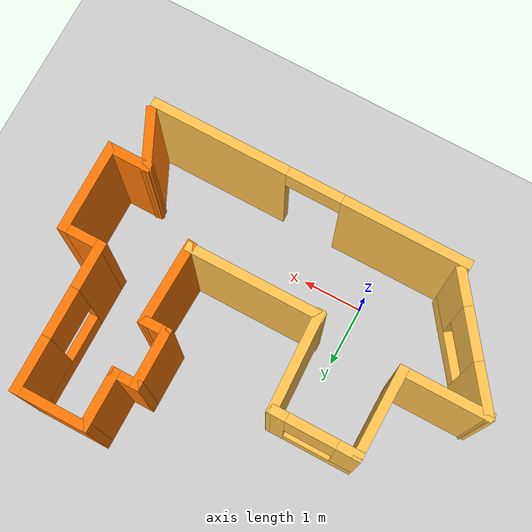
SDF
<sdf version="1.6">
 <world name="default">
  <light name="sun" type="directional">
   <pose>0 0 10 0 -0 0</pose>
   <diffuse>0.8 0.8 0.8 1</diffuse>
   <specular>0.2 0.2 0.2 1</specular>
   <attenuation>
    <range>1000</range>
    <constant>0.9</constant>
    <linear>0.01</linear>
    <quadratic>0.001</quadratic>
   </attenuation>
   <direction>-0.5 0.1 -0.9</direction>
  </light>
  <model name="ground_plane">
   <static>1</static>
   <link name="link">
    <collision name="collision">
     <geometry><plane><normal>0 0 1</normal><size>100 100</size></plane></geometry>
     <surface><friction><ode><mu>100</mu><mu2>50</mu2></ode></friction></surface>
    </collision>
    <visual name="visual">
     <cast_shadows>0</cast_shadows>
     <geometry><plane><normal>0 0 1</normal><size>100 100</size></plane></geometry>
     <material>
      <script><uri>file://media/materials/scripts/gazebo.material</uri><name>Gazebo/Grey</name></script>
     </material>
    </visual>
   </link>
  </model>
  <gravity>0 0 -9.8</gravity>
  <magnetic_field>6e-06 2.3e-05 -4.2e-05</magnetic_field>
  <atmosphere type="adiabatic"/>
  <physics name="default_physics" default="0" type="ode">
   <max_step_size>0.001</max_step_size>
   <real_time_factor>1</real_time_factor>
   <real_time_update_rate>1000</real_time_update_rate>
  </physics>
  <scene><ambient>0.4 0.4 0.4 1</ambient><background>0.7 0.7 0.7 1</background><shadows>1</shadows></scene>
  <spherical_coordinates>
   <surface_model>EARTH_WGS84</surface_model>
   <latitude_deg>0</latitude_deg>
   <longitude_deg>0</longitude_deg>
   <elevation>0</elevation>
   <heading_deg>0</heading_deg>
  </spherical_coordinates>
  <model name="world2">
   <pose>0.934991 1.50045 0 0 -0 0</pose>
   <link name="Wall_0">
    <pose>0.50694 -2.30955 0 0 -0 0</pose>
    <visual name="Wall_0_Visual_0">
     <pose>-1.58393 0 1.25 0 -0 0</pose>
     <geometry><box><size>2.08215 0.15 2.5</size></box></geometry>
     <material>
      <script><uri>file://media/materials/scripts/gazebo.material</uri><name>Gazebo/Grey</name></script>
      <ambient>1 0.764706 0.305882 1</ambient>
     </material>
     <meta><layer>0</layer></meta>
    </visual>
    <collision name="Wall_0_Collision_0">
     <geometry><box><size>2.08215 0.15 2.5</size></box></geometry>
     <pose>-1.58393 0 1.25 0 -0 0</pose>
    </collision>
    <visual name="Wall_0_Visual_1">
     <pose>1.49107 0 1.25 0 -0 0</pose>
     <geometry><box><size>2.26785 0.15 2.5</size></box></geometry>
     <material>
      <script><uri>file://media/materials/scripts/gazebo.material</uri><name>Gazebo/Grey</name></script>
      <ambient>1 0.764706 0.305882 1</ambient>
     </material>
     <meta><layer>0</layer></meta>
    </visual>
    <collision name="Wall_0_Collision_1">
     <geometry><box><size>2.26785 0.15 2.5</size></box></geometry>
     <pose>1.49107 0 1.25 0 -0 0</pose>
    </collision>
    <visual name="Wall_0_Visual_2">
     <pose>-0.092851 0 2.25 0 -0 0</pose>
     <geometry><box><size>0.9 0.15 0.5</size></box></geometry>
     <material>
      <script><uri>file://media/materials/scripts/gazebo.material</uri><name>Gazebo/Grey</name></script>
      <ambient>1 0.764706 0.305882 1</ambient>
     </material>
     <meta><layer>0</layer></meta>
    </visual>
    <collision name="Wall_0_Collision_2">
     <geometry><box><size>0.9 0.15 0.5</size></box></geometry>
     <pose>-0.092851 0 2.25 0 -0 0</pose>
    </collision>
   </link>
   <link name="Wall_1">
    <collision name="Wall_1_Collision">
     <geometry><box><size>1.00839 0.15 2.5</size></box></geometry>
     <pose>0 0 1.25 0 -0 0</pose>
    </collision>
    <visual name="Wall_1_Visual">
     <pose>0 0 1.25 0 -0 0</pose>
     <geometry><box><size>1.00839 0.15 2.5</size></box></geometry>
     <material>
      <script><uri>file://media/materials/scripts/gazebo.material</uri><name>Gazebo/Grey</name></script>
      <ambient>0.996078 0.47451 0.0196078 1</ambient>
     </material>
     <meta><layer>0</layer></meta>
    </visual>
    <pose>2.89603 -1.7796 0 0 -0 2.00619</pose>
   </link>
   <link name="Wall_10">
    <collision name="Wall_10_Collision">
     <geometry><box><size>0.5 0.15 2.5</size></box></geometry>
     <pose>0 0 1.25 0 -0 0</pose>
    </collision>
    <visual name="Wall_10_Visual">
     <pose>0 0 1.25 0 -0 0</pose>
     <geometry><box><size>0.5 0.15 2.5</size></box></geometry>
     <material>
      <script><uri>file://media/materials/scripts/gazebo.material</uri><name>Gazebo/Grey</name></script>
      <ambient>0.996078 0.47451 0.0196078 1</ambient>
     </material>
     <meta><layer>0</layer></meta>
    </visual>
    <pose>1.44001 0.609548 0 0 -0 0</pose>
   </link>
   <link name="Wall_14">
    <collision name="Wall_14_Collision">
     <geometry><box><size>1.66223 0.15 2.5</size></box></geometry>
     <pose>0 0 1.25 0 -0 0</pose>
    </collision>
    <visual name="Wall_14_Visual">
     <pose>0 0 1.25 0 -0 0</pose>
     <geometry><box><size>1.66223 0.15 2.5</size></box></geometry>
     <material>
      <script><uri>file://media/materials/scripts/gazebo.material</uri><name>Gazebo/Grey</name></script>
      <ambient>1 0.764706 0.305882 1</ambient>
     </material>
     <meta><layer>0</layer></meta>
    </visual>
    <pose>-0.55482 0.104035 0 0 -0 1.61071</pose>
   </link>
   <link name="Wall_15">
    <pose>-1.25999 0.859548 0 0 -0 3.14159</pose>
    <visual name="Wall_15_Visual_0">
     <pose>-0.59744 0 1.25 0 -0 0</pose>
     <geometry><box><size>0.305119 0.15 2.5</size></box></geometry>
     <material>
      <script><uri>file://media/materials/scripts/gazebo.material</uri><name>Gazebo/Grey</name></script>
      <ambient>1 0.764706 0.305882 1</ambient>
     </material>
     <meta><layer>0</layer></meta>
    </visual>
    <collision name="Wall_15_Collision_0">
     <geometry><box><size>0.305119 0.15 2.5</size></box></geometry>
     <pose>-0.59744 0 1.25 0 -0 0</pose>
    </collision>
    <visual name="Wall_15_Visual_1">
     <pose>0.15256 0 0.25 0 -0 0</pose>
     <geometry><box><size>1.19488 0.15 0.5</size></box></geometry>
     <material>
      <script><uri>file://media/materials/scripts/gazebo.material</uri><name>Gazebo/Grey</name></script>
      <ambient>1 0.764706 0.305882 1</ambient>
     </material>
     <meta><layer>0</layer></meta>
    </visual>
    <collision name="Wall_15_Collision_1">
     <geometry><box><size>1.19488 0.15 0.5</size></box></geometry>
     <pose>0.15256 0 0.25 0 -0 0</pose>
    </collision>
    <visual name="Wall_15_Visual_2">
     <pose>0.55256 0 1.5 0 -0 0</pose>
     <geometry><box><size>0.394881 0.15 2</size></box></geometry>
     <material>
      <script><uri>file://media/materials/scripts/gazebo.material</uri><name>Gazebo/Grey</name></script>
      <ambient>1 0.764706 0.305882 1</ambient>
     </material>
     <meta><layer>0</layer></meta>
    </visual>
    <collision name="Wall_15_Collision_2">
     <geometry><box><size>0.394881 0.15 2</size></box></geometry>
     <pose>0.55256 0 1.5 0 -0 0</pose>
    </collision>
    <visual name="Wall_15_Visual_3">
     <pose>-0.044881 0 1.9 0 -0 0</pose>
     <geometry><box><size>0.8 0.15 1.2</size></box></geometry>
     <material>
      <script><uri>file://media/materials/scripts/gazebo.material</uri><name>Gazebo/Grey</name></script>
      <ambient>1 0.764706 0.305882 1</ambient>
     </material>
     <meta><layer>0</layer></meta>
    </visual>
    <collision name="Wall_15_Collision_3">
     <geometry><box><size>0.8 0.15 1.2</size></box></geometry>
     <pose>-0.044881 0 1.9 0 -0 0</pose>
    </collision>
   </link>
   <link name="Wall_16">
    <collision name="Wall_16_Collision">
     <geometry><box><size>1.5 0.15 2.5</size></box></geometry>
     <pose>0 0 1.25 0 -0 0</pose>
    </collision>
    <visual name="Wall_16_Visual">
     <pose>0 0 1.25 0 -0 0</pose>
     <geometry><box><size>1.5 0.15 2.5</size></box></geometry>
     <material>
      <script><uri>file://media/materials/scripts/gazebo.material</uri><name>Gazebo/Grey</name></script>
      <ambient>1 0.764706 0.305882 1</ambient>
     </material>
     <meta><layer>0</layer></meta>
    </visual>
    <pose>-1.93499 0.184548 0 0 0 -1.5708</pose>
   </link>
   <link name="Wall_17">
    <collision name="Wall_17_Collision">
     <geometry><box><size>1.5 0.15 2.5</size></box></geometry>
     <pose>0 0 1.25 0 -0 0</pose>
    </collision>
    <visual name="Wall_17_Visual">
     <pose>0 0 1.25 0 -0 0</pose>
     <geometry><box><size>1.5 0.15 2.5</size></box></geometry>
     <material>
      <script><uri>file://media/materials/scripts/gazebo.material</uri><name>Gazebo/Grey</name></script>
      <ambient>1 0.764706 0.305882 1</ambient>
     </material>
     <meta><layer>0</layer></meta>
    </visual>
    <pose>-2.60999 -0.490452 0 0 -0 3.14159</pose>
   </link>
   <link name="Wall_18">
    <pose>-2.65397 -1.3296 0 0 0 -0.926031</pose>
    <visual name="Wall_18_Visual_0">
     <pose>-0.696021 0 1.25 0 -0 0</pose>
     <geometry><box><size>0.857828 0.15 2.5</size></box></geometry>
     <material>
      <script><uri>file://media/materials/scripts/gazebo.material</uri><name>Gazebo/Grey</name></script>
      <ambient>1 0.764706 0.305882 1</ambient>
     </material>
     <meta><layer>0</layer></meta>
    </visual>
    <collision name="Wall_18_Collision_0">
     <geometry><box><size>0.857828 0.15 2.5</size></box></geometry>
     <pose>-0.696021 0 1.25 0 -0 0</pose>
    </collision>
    <visual name="Wall_18_Visual_1">
     <pose>0.428914 0 0.25 0 -0 0</pose>
     <geometry><box><size>1.39204 0.15 0.5</size></box></geometry>
     <material>
      <script><uri>file://media/materials/scripts/gazebo.material</uri><name>Gazebo/Grey</name></script>
      <ambient>1 0.764706 0.305882 1</ambient>
     </material>
     <meta><layer>0</layer></meta>
    </visual>
    <collision name="Wall_18_Collision_1">
     <geometry><box><size>1.39204 0.15 0.5</size></box></geometry>
     <pose>0.428914 0 0.25 0 -0 0</pose>
    </collision>
    <visual name="Wall_18_Visual_2">
     <pose>0.828914 0 1.5 0 -0 0</pose>
     <geometry><box><size>0.592042 0.15 2</size></box></geometry>
     <material>
      <script><uri>file://media/materials/scripts/gazebo.material</uri><name>Gazebo/Grey</name></script>
      <ambient>1 0.764706 0.305882 1</ambient>
     </material>
     <meta><layer>0</layer></meta>
    </visual>
    <collision name="Wall_18_Collision_2">
     <geometry><box><size>0.592042 0.15 2</size></box></geometry>
     <pose>0.828914 0 1.5 0 -0 0</pose>
    </collision>
    <visual name="Wall_18_Visual_3">
     <pose>0.132893 0 1.9 0 -0 0</pose>
     <geometry><box><size>0.8 0.15 1.2</size></box></geometry>
     <material>
      <script><uri>file://media/materials/scripts/gazebo.material</uri><name>Gazebo/Grey</name></script>
      <ambient>1 0.764706 0.305882 1</ambient>
     </material>
     <meta><layer>0</layer></meta>
    </visual>
    <collision name="Wall_18_Collision_3">
     <geometry><box><size>0.8 0.15 1.2</size></box></geometry>
     <pose>0.132893 0 1.9 0 -0 0</pose>
    </collision>
   </link>
   <link name="Wall_2">
    <collision name="Wall_2_Collision">
     <geometry><box><size>0.75 0.15 2.5</size></box></geometry>
     <pose>0 0 1.25 0 -0 0</pose>
    </collision>
    <visual name="Wall_2_Visual">
     <pose>0 0 1.25 0 -0 0</pose>
     <geometry><box><size>0.75 0.15 2.5</size></box></geometry>
     <material>
      <script><uri>file://media/materials/scripts/gazebo.material</uri><name>Gazebo/Grey</name></script>
      <ambient>0.996078 0.47451 0.0196078 1</ambient>
     </material>
     <meta><layer>0</layer></meta>
    </visual>
    <pose>3.01501 -1.39045 0 0 -0 0</pose>
   </link>
   <link name="Wall_20">
    <collision name="Wall_20_Collision">
     <geometry><box><size>2.25 0.15 2.5</size></box></geometry>
     <pose>0 0 1.25 0 -0 0</pose>
    </collision>
    <visual name="Wall_20_Visual">
     <pose>0 0 1.25 0 -0 0</pose>
     <geometry><box><size>2.25 0.15 2.5</size></box></geometry>
     <material>
      <script><uri>file://media/materials/scripts/gazebo.material</uri><name>Gazebo/Grey</name></script>
      <ambient>1 0.764706 0.305882 1</ambient>
     </material>
     <meta><layer>0</layer></meta>
    </visual>
    <pose>0.505236 -0.631366 0 0 -0 0</pose>
   </link>
   <link name="Wall_21">
    <collision name="Wall_21_Collision">
     <geometry><box><size>1.41165 0.15 2.5</size></box></geometry>
     <pose>0 0 1.25 0 -0 0</pose>
    </collision>
    <visual name="Wall_21_Visual">
     <pose>0 0 1.25 0 -0 0</pose>
     <geometry><box><size>1.41165 0.15 2.5</size></box></geometry>
     <material>
      <script><uri>file://media/materials/scripts/gazebo.material</uri><name>Gazebo/Grey</name></script>
      <ambient>0.996078 0.47451 0.0196078 1</ambient>
     </material>
     <meta><layer>0</layer></meta>
    </visual>
    <pose>1.59518 -0.020965 0 0 -0 1.53936</pose>
   </link>
   <link name="Wall_3">
    <collision name="Wall_3_Collision">
     <geometry><box><size>1.5 0.15 2.5</size></box></geometry>
     <pose>0 0 1.25 0 -0 0</pose>
    </collision>
    <visual name="Wall_3_Visual">
     <pose>0 0 1.25 0 -0 0</pose>
     <geometry><box><size>1.5 0.15 2.5</size></box></geometry>
     <material>
      <script><uri>file://media/materials/scripts/gazebo.material</uri><name>Gazebo/Grey</name></script>
      <ambient>0.996078 0.47451 0.0196078 1</ambient>
     </material>
     <meta><layer>0</layer></meta>
    </visual>
    <pose>3.31501 -0.715452 0 0 -0 1.5708</pose>
   </link>
   <link name="Wall_4">
    <collision name="Wall_4_Collision">
     <geometry><box><size>0.75 0.15 2.5</size></box></geometry>
     <pose>0 0 1.25 0 -0 0</pose>
    </collision>
    <visual name="Wall_4_Visual">
     <pose>0 0 1.25 0 -0 0</pose>
     <geometry><box><size>0.75 0.15 2.5</size></box></geometry>
     <material>
      <script><uri>file://media/materials/scripts/gazebo.material</uri><name>Gazebo/Grey</name></script>
      <ambient>0.996078 0.47451 0.0196078 1</ambient>
     </material>
     <meta><layer>0</layer></meta>
    </visual>
    <pose>3.01501 -0.040452 0 0 -0 3.14159</pose>
   </link>
   <link name="Wall_5">
    <pose>2.71501 1.13455 0 0 -0 1.5708</pose>
    <visual name="Wall_5_Visual_0">
     <pose>-0.856368 0 1.25 0 -0 0</pose>
     <geometry><box><size>0.787263 0.15 2.5</size></box></geometry>
     <material>
      <script><uri>file://media/materials/scripts/gazebo.material</uri><name>Gazebo/Grey</name></script>
      <ambient>0.996078 0.47451 0.0196078 1</ambient>
     </material>
     <meta><layer>0</layer></meta>
    </visual>
    <collision name="Wall_5_Collision_0">
     <geometry><box><size>0.787263 0.15 2.5</size></box></geometry>
     <pose>-0.856368 0 1.25 0 -0 0</pose>
    </collision>
    <visual name="Wall_5_Visual_1">
     <pose>0.393632 0 0.25 0 -0 0</pose>
     <geometry><box><size>1.71274 0.15 0.5</size></box></geometry>
     <material>
      <script><uri>file://media/materials/scripts/gazebo.material</uri><name>Gazebo/Grey</name></script>
      <ambient>0.996078 0.47451 0.0196078 1</ambient>
     </material>
     <meta><layer>0</layer></meta>
    </visual>
    <collision name="Wall_5_Collision_1">
     <geometry><box><size>1.71274 0.15 0.5</size></box></geometry>
     <pose>0.393632 0 0.25 0 -0 0</pose>
    </collision>
    <visual name="Wall_5_Visual_2">
     <pose>0.793632 0 1.5 0 -0 0</pose>
     <geometry><box><size>0.912737 0.15 2</size></box></geometry>
     <material>
      <script><uri>file://media/materials/scripts/gazebo.material</uri><name>Gazebo/Grey</name></script>
      <ambient>0.996078 0.47451 0.0196078 1</ambient>
     </material>
     <meta><layer>0</layer></meta>
    </visual>
    <collision name="Wall_5_Collision_2">
     <geometry><box><size>0.912737 0.15 2</size></box></geometry>
     <pose>0.793632 0 1.5 0 -0 0</pose>
    </collision>
    <visual name="Wall_5_Visual_3">
     <pose>-0.062737 0 1.9 0 -0 0</pose>
     <geometry><box><size>0.8 0.15 1.2</size></box></geometry>
     <material>
      <script><uri>file://media/materials/scripts/gazebo.material</uri><name>Gazebo/Grey</name></script>
      <ambient>0.996078 0.47451 0.0196078 1</ambient>
     </material>
     <meta><layer>0</layer></meta>
    </visual>
    <collision name="Wall_5_Collision_3">
     <geometry><box><size>0.8 0.15 1.2</size></box></geometry>
     <pose>-0.062737 0 1.9 0 -0 0</pose>
    </collision>
   </link>
   <link name="Wall_6">
    <collision name="Wall_6_Collision">
     <geometry><box><size>1.25 0.15 2.5</size></box></geometry>
     <pose>0 0 1.25 0 -0 0</pose>
    </collision>
    <visual name="Wall_6_Visual">
     <pose>0 0 1.25 0 -0 0</pose>
     <geometry><box><size>1.25 0.15 2.5</size></box></geometry>
     <material>
      <script><uri>file://media/materials/scripts/gazebo.material</uri><name>Gazebo/Grey</name></script>
      <ambient>0.996078 0.47451 0.0196078 1</ambient>
     </material>
     <meta><layer>0</layer></meta>
    </visual>
    <pose>2.16501 2.30955 0 0 -0 3.14159</pose>
   </link>
   <link name="Wall_7">
    <collision name="Wall_7_Collision">
     <geometry><box><size>1 0.15 2.5</size></box></geometry>
     <pose>0 0 1.25 0 -0 0</pose>
    </collision>
    <visual name="Wall_7_Visual">
     <pose>0 0 1.25 0 -0 0</pose>
     <geometry><box><size>1 0.15 2.5</size></box></geometry>
     <material>
      <script><uri>file://media/materials/scripts/gazebo.material</uri><name>Gazebo/Grey</name></script>
      <ambient>0.996078 0.47451 0.0196078 1</ambient>
     </material>
     <meta><layer>0</layer></meta>
    </visual>
    <pose>1.61501 1.88455 0 0 0 -1.5708</pose>
   </link>
   <link name="Wall_8">
    <collision name="Wall_8_Collision">
     <geometry><box><size>0.5 0.15 2.5</size></box></geometry>
     <pose>0 0 1.25 0 -0 0</pose>
    </collision>
    <visual name="Wall_8_Visual">
     <pose>0 0 1.25 0 -0 0</pose>
     <geometry><box><size>0.5 0.15 2.5</size></box></geometry>
     <material>
      <script><uri>file://media/materials/scripts/gazebo.material</uri><name>Gazebo/Grey</name></script>
      <ambient>0.996078 0.47451 0.0196078 1</ambient>
     </material>
     <meta><layer>0</layer></meta>
    </visual>
    <pose>1.44001 1.45955 0 0 -0 3.14159</pose>
   </link>
   <link name="Wall_9">
    <collision name="Wall_9_Collision">
     <geometry><box><size>1 0.15 2.5</size></box></geometry>
     <pose>0 0 1.25 0 -0 0</pose>
    </collision>
    <visual name="Wall_9_Visual">
     <pose>0 0 1.25 0 -0 0</pose>
     <geometry><box><size>1 0.15 2.5</size></box></geometry>
     <material>
      <script><uri>file://media/materials/scripts/gazebo.material</uri><name>Gazebo/Grey</name></script>
      <ambient>0.996078 0.47451 0.0196078 1</ambient>
     </material>
     <meta><layer>0</layer></meta>
    </visual>
    <pose>1.26501 1.03455 0 0 0 -1.5708</pose>
   </link>
   <static>1</static>
  </model>
 </world>
</sdf>
